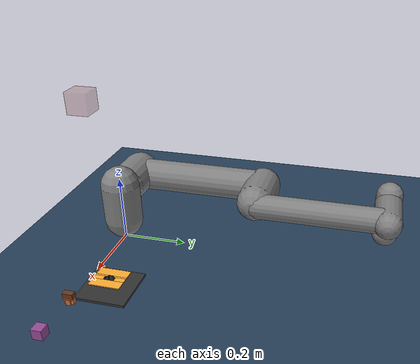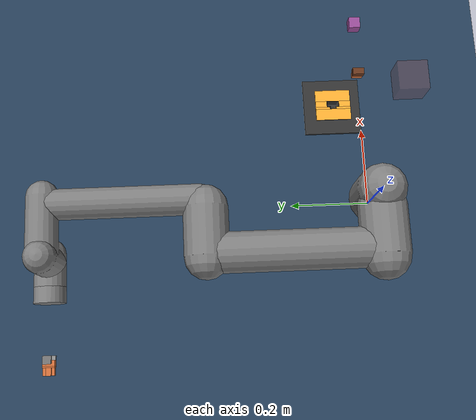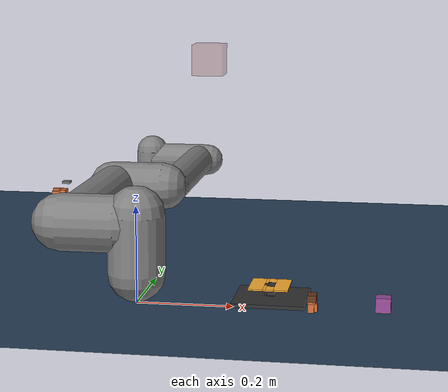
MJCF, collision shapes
<mujoco model="Arena">
  <compiler angle="radian"/>

  <option impratio="10" noslip_tolerance="0" integrator="implicitfast" cone="elliptic" noslip_iterations="5"/>

  <visual>
    <global azimuth="160" elevation="-20" offwidth="128" offheight="128"/>
    <quality offsamples="8"/>
    <headlight ambient="0.5 0.5 0.5"/>
    <scale framelength="0.1" framewidth="0.005"/>
  </visual>

  <statistic extent="0.8" center="0.3 0 0.4"/>

  <default>
    <default class="ur5e">
      <material shininess="0.25"/>
      <joint range="-6.28319 6.28319" armature="0.1"/>
      <site size="0.001 0.005 0.005" group="4" rgba="0.5 0.5 0.5 0.3"/>
      <general ctrlrange="-6.2831 6.2831" forcerange="-150 150" biastype="affine" gainprm="2000" biasprm="0 -2000 -400"/>
      <default class="size3">
        <default class="size3_limited">
          <joint range="-3.1415 3.1415"/>
          <general ctrlrange="-3.1415 3.1415"/>
        </default>
      </default>
      <default class="size1">
        <general forcerange="-28 28" gainprm="500" biasprm="0 -500 -100"/>
      </default>
      <default class="visual">
        <geom type="mesh" contype="0" conaffinity="0" group="2"/>
      </default>
      <default class="connector">
        <geom type="box" group="3" friction="0.95 0.3 0.1" solimp="0.998 0.998" density="200" material="connector_mat"/>
      </default>
      <default class="hande_collision">
        <geom type="mesh" contype="0" conaffinity="3" group="3" priority="1" solref="0.01" solimp="0.99 0.995 0.01" margin="0.0001"/>
        <default class="pad_box2">
          <geom size="0.003 0.0105 0.01" type="box" contype="1" conaffinity="1" friction="0.7" solref="0.004" solimp="0.95 0.99 0.001" rgba="0.55 0.55 0.55 1"/>
        </default>
        <default class="pad_box1">
          <geom size="0.003 0.0105 0.01" type="box" contype="1" conaffinity="1" friction="0.6" solref="0.004" solimp="0.95 0.99 0.001" rgba="0.45 0.45 0.45 1"/>
        </default>
      </default>
      <default class="collision">
        <geom type="capsule" group="3"/>
        <default class="eef_collision">
          <geom type="cylinder"/>
        </default>
      </default>
    </default>
    <default class="hande">
      <default class="hande_right_finger">
        <joint type="slide" range="0 0.025"/>
      </default>
      <default class="hande_left_finger">
        <joint type="slide" range="0 0.025"/>
      </default>
    </default>
  </default>

  <asset>
    <texture type="skybox" builtin="flat" rgb1="1 1 1" rgb2="1 1 1" width="256" height="1536"/>
    <texture type="skybox" builtin="flat" rgb1="1 1 1" rgb2="1 1 1" width="256" height="1536"/>
    <texture type="skybox" builtin="gradient" rgb1="0.3 0.5 0.7" rgb2="0 0 0" width="32" height="192"/>
    <texture type="2d" name="grid" builtin="checker" rgb1="0.1 0.2 0.3" rgb2="0.2 0.3 0.4" width="512" height="512"/>
    <material name="black" class="ur5e" rgba="0.033 0.033 0.033 1"/>
    <material name="jointgray" class="ur5e" rgba="0.278 0.278 0.278 1"/>
    <material name="linkgray" class="ur5e" rgba="0.82 0.82 0.82 1"/>
    <material name="urblue" class="ur5e" rgba="0.49 0.678 0.8 1"/>
    <material name="connector_mat" specular="0" rgba="0.824 0.435 0.227 1"/>
    <material name="connector_mat2" specular="0" rgba="0.412 0.2175 0.1135 1"/>
    <material name="table_mat" specular="0" rgba="0.2 0.2 0.2 1"/>
    <material name="port_mat" specular="0" rgba="1 0.69 0.2 1"/>
    <material name="grid" texture="grid" texuniform="true" texrepeat="2 2"/>
    <material name="boundary_material" rgba="1 0 0 0.3"/>
    <mesh name="base_0" file="ur5e/assets/base_0.obj"/>
    <mesh name="base_1" file="ur5e/assets/base_1.obj"/>
    <mesh name="shoulder_0" file="ur5e/assets/shoulder_0.obj"/>
    <mesh name="shoulder_1" file="ur5e/assets/shoulder_1.obj"/>
    <mesh name="shoulder_2" file="ur5e/assets/shoulder_2.obj"/>
    <mesh name="upperarm_0" file="ur5e/assets/upperarm_0.obj"/>
    <mesh name="upperarm_1" file="ur5e/assets/upperarm_1.obj"/>
    <mesh name="upperarm_2" file="ur5e/assets/upperarm_2.obj"/>
    <mesh name="upperarm_3" file="ur5e/assets/upperarm_3.obj"/>
    <mesh name="forearm_0" file="ur5e/assets/forearm_0.obj"/>
    <mesh name="forearm_1" file="ur5e/assets/forearm_1.obj"/>
    <mesh name="forearm_2" file="ur5e/assets/forearm_2.obj"/>
    <mesh name="forearm_3" file="ur5e/assets/forearm_3.obj"/>
    <mesh name="wrist1_0" file="ur5e/assets/wrist1_0.obj"/>
    <mesh name="wrist1_1" file="ur5e/assets/wrist1_1.obj"/>
    <mesh name="wrist1_2" file="ur5e/assets/wrist1_2.obj"/>
    <mesh name="wrist2_0" file="ur5e/assets/wrist2_0.obj"/>
    <mesh name="wrist2_1" file="ur5e/assets/wrist2_1.obj"/>
    <mesh name="wrist2_2" file="ur5e/assets/wrist2_2.obj"/>
    <mesh name="wrist3" file="ur5e/assets/wrist3.obj"/>
    <mesh name="hande" file="hande/assets/hande.stl"/>
    <mesh name="coupler" file="hande/assets/coupler.stl"/>
    <mesh name="right_finger" file="hande/assets/finger_1.stl"/>
    <mesh name="left_finger" file="hande/assets/finger_2.stl"/>
  </asset>

  <worldbody>
    <geom name="floor" size="3 3 0.01" type="plane" material="grid"/>
    <camera name="front" pos="1.3 0 0.7" quat="0.596368 0.379928 0.379928 0.596368"/>
    <light name="spotlight" target="wrist_2_link" pos="0 -1 2" dir="0 0 -1" mode="targetbodycom"/>
    <light pos="0 0 3" dir="0 0 -1" diffuse="1 1 1"/>
    <light target="block" pos="0 -0.5 0.4" dir="0 0 -1" diffuse="0.8 0.8 0.8" mode="targetbodycom"/>
    <body name="base" childclass="ur5e" quat="0.707107 0 0 0.707107">
      <inertial pos="0 0 0" mass="4" diaginertia="0.00443333 0.00443333 0.0072"/>
      <geom class="visual" material="black" mesh="base_0"/>
      <geom class="visual" material="jointgray" mesh="base_1"/>
      <body name="shoulder_link" pos="0 0 0.163">
        <inertial pos="0 0 0" mass="3.7" diaginertia="0.0102675 0.0102675 0.00666"/>
        <joint name="shoulder_pan_joint" class="size3" pos="0 0 0" axis="0 0 1"/>
        <geom class="visual" material="urblue" mesh="shoulder_0"/>
        <geom class="visual" material="black" mesh="shoulder_1"/>
        <geom class="visual" material="jointgray" mesh="shoulder_2"/>
        <geom class="collision" size="0.06 0.06" pos="0 0 -0.04"/>
        <site name="shoulder_pan_joint" pos="0 0 0"/>
        <body name="upper_arm_link" pos="0 0.138 0" quat="0.707107 0 0.707107 0">
          <inertial pos="0 0 0.2125" mass="8.393" diaginertia="0.133886 0.133886 0.0151074"/>
          <joint name="shoulder_lift_joint" class="size3" pos="0 0 0" axis="0 1 0"/>
          <geom class="visual" material="linkgray" mesh="upperarm_0"/>
          <geom class="visual" material="black" mesh="upperarm_1"/>
          <geom class="visual" material="jointgray" mesh="upperarm_2"/>
          <geom class="visual" material="urblue" mesh="upperarm_3"/>
          <geom class="collision" size="0.06 0.06" pos="0 -0.04 0" quat="0.707107 0.707107 0 0"/>
          <geom class="collision" size="0.05 0.2" pos="0 0 0.2"/>
          <site name="shoulder_lift_joint" pos="0 0 0"/>
          <body name="forearm_link" pos="0 -0.131 0.425">
            <inertial pos="0 0 0.196" mass="2.275" diaginertia="0.0311796 0.0311796 0.004095"/>
            <joint name="elbow_joint" class="size3_limited" pos="0 0 0" axis="0 1 0"/>
            <geom class="visual" material="urblue" mesh="forearm_0"/>
            <geom class="visual" material="linkgray" mesh="forearm_1"/>
            <geom class="visual" material="black" mesh="forearm_2"/>
            <geom class="visual" material="jointgray" mesh="forearm_3"/>
            <geom class="collision" size="0.055 0.06" pos="0 0.08 0" quat="0.707107 0.707107 0 0"/>
            <geom class="collision" size="0.038 0.19" pos="0 0 0.2"/>
            <site name="elbow_joint" pos="0 0 0"/>
            <body name="wrist_1_link" pos="0 0 0.392" quat="0.707107 0 0.707107 0">
              <inertial pos="0 0.127 0" mass="1.219" diaginertia="0.0025599 0.0025599 0.0021942"/>
              <joint name="wrist_1_joint" class="size1" pos="0 0 0" axis="0 1 0"/>
              <geom class="visual" material="black" mesh="wrist1_0"/>
              <geom class="visual" material="urblue" mesh="wrist1_1"/>
              <geom class="visual" material="jointgray" mesh="wrist1_2"/>
              <geom class="collision" size="0.04 0.07" pos="0 0.05 0" quat="0.707107 0.707107 0 0"/>
              <site name="wrist_1_joint" pos="0 0 0"/>
              <body name="wrist_2_link" pos="0 0.127 0">
                <inertial pos="0 0 0.1" mass="1.219" diaginertia="0.0025599 0.0025599 0.0021942"/>
                <joint name="wrist_2_joint" class="size1" pos="0 0 0" axis="0 0 1"/>
                <geom class="visual" material="black" mesh="wrist2_0"/>
                <geom class="visual" material="urblue" mesh="wrist2_1"/>
                <geom class="visual" material="jointgray" mesh="wrist2_2"/>
                <geom class="collision" size="0.04 0.06" pos="0 0 0.04"/>
                <geom class="collision" size="0.04 0.04" pos="0 0.02 0.1" quat="0.707107 0.707107 0 0"/>
                <site name="wrist_2_joint" pos="0 0 0"/>
                <body name="wrist_3_link" pos="0 0 0.1">
                  <inertial pos="0 0.0771683 0" quat="0.707107 0 0 0.707107" mass="0.1889" diaginertia="0.000132134 9.90863e-05 9.90863e-05"/>
                  <joint name="wrist_3_joint" class="size1" pos="0 0 0" axis="0 1 0"/>
                  <geom class="visual" material="linkgray" mesh="wrist3"/>
                  <geom class="eef_collision" size="0.04 0.02" pos="0 0.08 0" quat="0.707107 0.707107 0 0"/>
                  <site name="wrist_3_joint" pos="0 0 0"/>
                  <body name="tool0_link" pos="0 0.1 0" quat="-0.707107 0.707107 0 0">
                    <site name="attachment_site" pos="0 0 0"/>
                    <site name="eef_site" pos="0 0 0.05" quat="0 0.707107 -0.707107 0"/>
                    <camera name="handcam_depth" pos="-0.05 0 0" quat="0 0.707107 -0.707107 0" fovy="62"/>
                    <camera name="handcam_rgb" pos="-0.05 0.015 0" quat="0 0.707107 -0.707107 0" fovy="42.5"/>
                    <body name="hande" quat="-0.707107 0 0 0.707107">
                      <geom name="hande_coupler" class="visual" rgba="0.1 0.1 0.1 1" mesh="coupler"/>
                      <geom name="hande_base" class="visual" rgba="0.1 0.1 0.1 1" mesh="hande"/>
                      <site name="pinch" pos="0 0 0.135" rgba="0 0 0 0.1"/>
                      <body name="hande_left_finger" pos="0 0 0.099">
                        <inertial pos="0.02262 -0.00759 0.00738" quat="0.871952 0.0369732 -0.211073 0.440205" mass="0.03804" diaginertia="1.22763e-05 1.22763e-05 1.22763e-05"/>
                        <joint name="hande_left_finger_joint" class="hande_left_finger" pos="0 0 0" axis="1 0 0" armature="0.001"/>
                        <geom name="left_pad1" class="pad_box1" pos="-0.0279853 3.19444e-05 0.0365" mass="0"/>
                        <geom class="visual" rgba="0.4 0.4 0.4 1" mesh="left_finger"/>
                      </body>
                      <body name="hande_right_finger" pos="0 0 0.099">
                        <inertial pos="-0.02262 0.00759 0.00738" quat="0.871952 -0.0369732 0.211073 0.440205" mass="0.03804" diaginertia="1.22763e-05 1.22763e-05 1.22763e-05"/>
                        <joint name="hande_right_finger_joint" class="hande_right_finger" pos="0 0 0" axis="-1 0 0" armature="0.001"/>
                        <geom name="right_pad1" class="pad_box2" pos="0.0279853 -3.19444e-05 0.0365" mass="0"/>
                        <geom class="visual" rgba="0.4 0.4 0.4 1" mesh="right_finger"/>
                      </body>
                      <body name="connector" pos="0 0 0.15">
                        <geom class="connector" size="0.008775 0.015 0.00175" pos="0 0 0.00175"/>
                        <geom class="connector" size="0.008775 0.015 0.007" pos="0 0 -0.007"/>
                        <geom class="connector" size="0.00604 0.014175 0.0096" pos="0.001085 0 0.0131"/>
                        <geom class="connector" size="0.0029 0.006555 0.0096" pos="-0.007855 0 0.0131"/>
                      </body>
                    </body>
                  </body>
                </body>
              </body>
            </body>
          </body>
        </body>
      </body>
    </body>
    <body name="connector_body" pos="0.35 0 0.02" quat="0 0 1 0">
      <joint name="connector" type="free" limited="false" actuatorfrclimited="false"/>
      <geom name="connector_back" size="0.008775 0.015 0.00175" pos="-0.008775 0 0.00175" type="box" condim="4" friction="0.95 0.3 0.1" solimp="0.998 0.998" density="200" material="connector_mat"/>
      <geom name="connector_top" size="0.008775 0.015 0.007" pos="-0.008775 0 -0.007" type="box" condim="4" friction="0.95 0.3 0.1" solimp="0.998 0.998" density="200" material="connector_mat2"/>
      <geom size="0.00604 0.014175 0.0096" pos="-0.00769 0 0.0131" type="box" condim="4" friction="0.95 0.3 0.1" solimp="0.998 0.998" density="100" material="connector_mat"/>
      <geom size="0.0029 0.006555 0.0096" pos="-0.01663 4.99988e-06 0.0131" type="box" condim="4" friction="0.95 0.3 0.1" solimp="0.998 0.998" density="100" material="connector_mat"/>
    </body>
    <body name="port_adapter" pos="0.268569 0.0757501 0">
      <inertial pos="0 0 -0.0115" mass="3.88125" diaginertia="0.0203859 0.0203859 0.0404297"/>
      <geom name="plate" size="0.075 0.075 0.006" type="box" density="2700" material="table_mat"/>
      <body name="port1" pos="0.008 0 0.03" quat="0 1 0 0">
        <geom size="0.000825 0.01458 0.0096" pos="-0.000825 0 0.0096" type="box" material="table_mat"/>
        <geom size="0.007955 0.000825 0.0096" pos="-0.007955 0.015405 0.0096" type="box" material="table_mat"/>
        <geom size="0.007955 0.000825 0.0096" pos="-0.007955 -0.015405 0.0096" type="box" material="table_mat"/>
        <geom size="0.000825 0.003795 0.0096" pos="-0.015085 0.010785 0.0096" type="box" material="table_mat"/>
        <geom size="0.000825 0.003795 0.0096" pos="-0.015085 -0.010785 0.0096" type="box" material="table_mat"/>
        <geom size="0.00293 0.000825 0.0096" pos="-0.01884 0.007815 0.0096" type="box" material="table_mat"/>
        <geom size="0.00293 0.000825 0.0096" pos="-0.01884 -0.007815 0.0096" type="box" material="table_mat"/>
        <geom size="0.000825 0.00699 0.0096" pos="-0.020945 0 0.0096" type="box" material="table_mat"/>
        <geom size="0.007955 0.01623 0.000825" pos="-0.007955 0 0.020025" type="box" material="table_mat"/>
        <geom size="0.00293 0.00864 0.000825" pos="-0.01884 0 0.020025" type="box" material="table_mat"/>
        <geom size="0.015 0.04623 0.0015" pos="-0.03677 0 0.0015" type="box" material="port_mat"/>
        <geom size="0.015 0.04623 0.0015" pos="0.015 0 0.0015" type="box" material="port_mat"/>
        <geom size="0.00293 0.018795 0.0015" pos="-0.01884 0.027435 0.0015" type="box" material="port_mat"/>
        <geom size="0.007955 0.015 0.0015" pos="-0.007955 0.03123 0.0015" type="box" material="port_mat"/>
        <geom size="0.00293 0.018795 0.0015" pos="-0.01884 -0.027435 0.0015" type="box" material="port_mat"/>
        <geom size="0.007955 0.015 0.0015" pos="-0.007955 -0.03123 0.0015" type="box" material="port_mat"/>
      </body>
    </body>
    <body name="block" pos="0.5 0 0.02">
      <joint name="block" type="free" limited="false" actuatorfrclimited="false"/>
      <geom name="block" size="0.015 0.015 0.015" type="box" contype="2" friction="1 0.03 0.003" solref="0.01" margin="0.0001" mass="0.01" rgba="0.6 0.3 0.6 1"/>
    </body>
    <body name="target" pos="0.15 0 0.5" quat="0 1 0 0" mocap="true">
      <geom name="target" size="0.03 0.03 0.03" type="box" contype="0" conaffinity="0" rgba="0.6 0.3 0.3 0.3"/>
    </body>
  </worldbody>

  <equality>
    <joint joint1="hande_left_finger_joint" joint2="hande_right_finger_joint" polycoef="0 1 0 0 0" solref="0.005" solimp="0.95 0.99"/>
  </equality>

  <tendon>
    <fixed name="split">
      <joint joint="hande_left_finger_joint" coef="0.5"/>
      <joint joint="hande_right_finger_joint" coef="0.5"/>
    </fixed>
  </tendon>

  <actuator>
    <general name="shoulder_pan" class="size3" joint="shoulder_pan_joint"/>
    <general name="shoulder_lift" class="size3" joint="shoulder_lift_joint"/>
    <general name="elbow" class="size3_limited" joint="elbow_joint"/>
    <general name="wrist_1" class="size1" joint="wrist_1_joint"/>
    <general name="wrist_2" class="size1" joint="wrist_2_joint"/>
    <general name="wrist_3" class="size1" joint="wrist_3_joint"/>
    <general name="hande_fingers_actuator" class="hande" tendon="split" ctrlrange="0 255" forcerange="-180 180" gaintype="affine" biastype="affine" gainprm="0.00980392" biasprm="0 -100 -10"/>
  </actuator>

  <sensor>
    <jointpos joint="shoulder_pan_joint" name="ur5e/joint1_pos"/>
    <jointpos joint="shoulder_lift_joint" name="ur5e/joint2_pos"/>
    <jointpos joint="elbow_joint" name="ur5e/joint3_pos"/>
    <jointpos joint="wrist_1_joint" name="ur5e/joint4_pos"/>
    <jointpos joint="wrist_2_joint" name="ur5e/joint5_pos"/>
    <jointpos joint="wrist_3_joint" name="ur5e/joint6_pos"/>
    <jointvel joint="shoulder_pan_joint" name="ur5e/joint1_vel"/>
    <jointvel joint="shoulder_lift_joint" name="ur5e/joint2_vel"/>
    <jointvel joint="elbow_joint" name="ur5e/joint3_vel"/>
    <jointvel joint="wrist_1_joint" name="ur5e/joint4_vel"/>
    <jointvel joint="wrist_2_joint" name="ur5e/joint5_vel"/>
    <jointvel joint="wrist_3_joint" name="ur5e/joint6_vel"/>
    <torque site="shoulder_pan_joint" name="ur5e/joint1_torque"/>
    <torque site="shoulder_lift_joint" name="ur5e/joint2_torque"/>
    <torque site="elbow_joint" name="ur5e/joint3_torque"/>
    <torque site="wrist_1_joint" name="ur5e/joint4_torque"/>
    <torque site="wrist_2_joint" name="ur5e/joint5_torque"/>
    <torque site="wrist_3_joint" name="ur5e/joint6_torque"/>
    <force site="attachment_site" name="ur5e/wrist_force"/>
    <torque site="attachment_site" name="ur5e/wrist_torque"/>
    <framepos objtype="site" objname="pinch" name="hande/pinch_pos"/>
    <framequat objtype="site" objname="pinch" name="hande/pinch_quat"/>
    <framelinvel objtype="site" objname="pinch" name="hande/pinch_vel"/>
    <framepos objtype="body" objname="connector_body" name="connector_pos"/>
    <framequat objtype="body" objname="connector_body" name="connector_quat"/>
    <framepos objtype="geom" objname="block" name="block_pos"/>
    <framequat objtype="geom" objname="block" name="block_quat"/>
  </sensor>
</mujoco>
